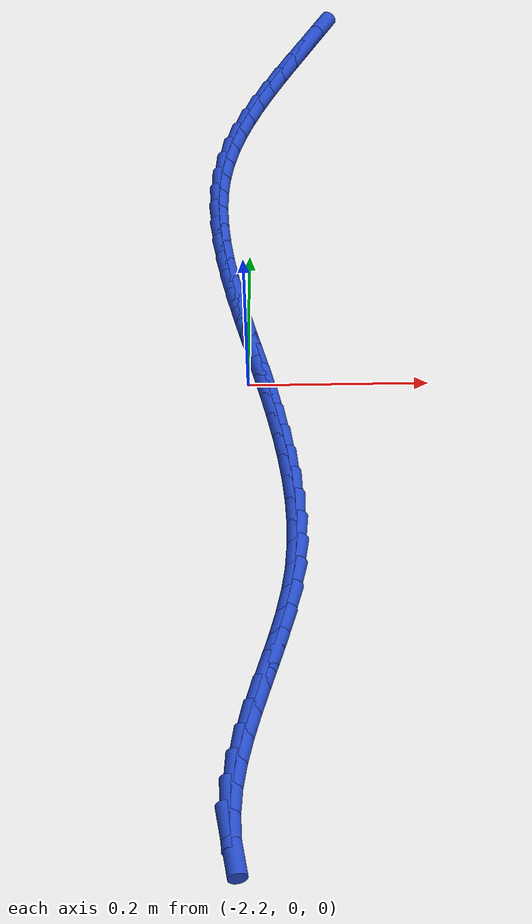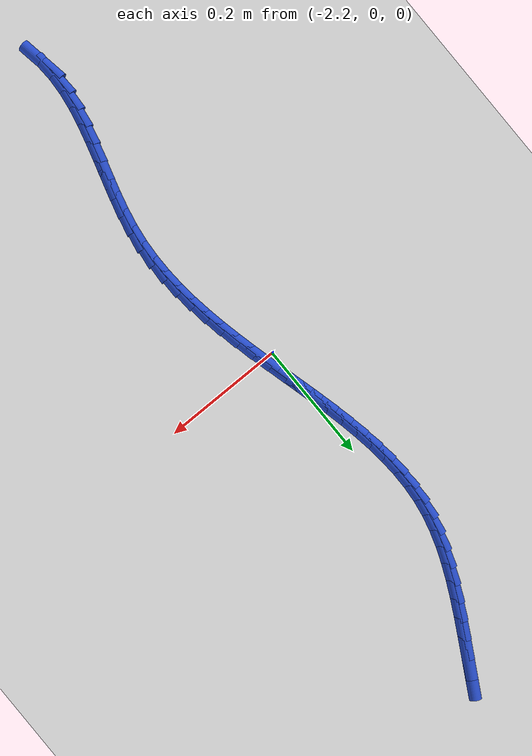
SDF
<sdf version="1.6">
 <world name="default">
  <model name="ground_plane">
   <static>1</static>
   <link name="link">
    <collision name="collision">
     <geometry><plane><normal>0 0 1</normal><size>100 100</size></plane></geometry>
     <surface><friction><ode><mu>100</mu><mu2>50</mu2></ode></friction></surface>
    </collision>
    <visual name="visual">
     <cast_shadows>0</cast_shadows>
     <geometry><plane><normal>0 0 1</normal><size>100 100</size></plane></geometry>
     <material>
      <script><uri>file://media/materials/scripts/gazebo.material</uri><name>Gazebo/WhiteGlow</name></script>
     </material>
    </visual>
   </link>
  </model>
  <model name="line">
   <link name="link_103">
    <pose>-2.1206193785751184 0.5871853800706633 0.01 0 1.57 1.0613909155585042</pose>
    <collision name="collision">
     <geometry><cylinder><radius>0.01</radius><length>0.08</length></cylinder></geometry>
    </collision>
    <visual name="visual">
     <material>
      <script><name>Gazebo/Blue</name><uri>file://media/materials/scripts/gazebo.material</uri></script>
     </material>
     <geometry><cylinder><radius>0.01</radius><length>0.08</length></cylinder></geometry>
    </visual>
   </link>
   <link name="link_104">
    <pose>-2.1363134453337125 0.5590889335191173 0.01 0 1.57 1.061616535425581</pose>
    <collision name="collision">
     <geometry><cylinder><radius>0.01</radius><length>0.08</length></cylinder></geometry>
    </collision>
    <visual name="visual">
     <material>
      <script><name>Gazebo/Blue</name><uri>file://media/materials/scripts/gazebo.material</uri></script>
     </material>
     <geometry><cylinder><radius>0.01</radius><length>0.08</length></cylinder></geometry>
    </visual>
   </link>
   <link name="link_105">
    <pose>-2.151620590715575 0.5316706481648501 0.01 0 1.57 1.0701894804564374</pose>
    <collision name="collision">
     <geometry><cylinder><radius>0.01</radius><length>0.08</length></cylinder></geometry>
    </collision>
    <visual name="visual">
     <material>
      <script><name>Gazebo/Blue</name><uri>file://media/materials/scripts/gazebo.material</uri></script>
     </material>
     <geometry><cylinder><radius>0.01</radius><length>0.08</length></cylinder></geometry>
    </visual>
   </link>
   <link name="link_106">
    <pose>-2.1663204991392115 0.5048014138864755 0.01 0 1.57 1.087750220462706</pose>
    <collision name="collision">
     <geometry><cylinder><radius>0.01</radius><length>0.08</length></cylinder></geometry>
    </collision>
    <visual name="visual">
     <material>
      <script><name>Gazebo/Blue</name><uri>file://media/materials/scripts/gazebo.material</uri></script>
     </material>
     <geometry><cylinder><radius>0.01</radius><length>0.08</length></cylinder></geometry>
    </visual>
   </link>
   <link name="link_107">
    <pose>-2.180192855023134 0.47835212056260845 0.01 0 1.57 1.1149698035746949</pose>
    <collision name="collision">
     <geometry><cylinder><radius>0.01</radius><length>0.08</length></cylinder></geometry>
    </collision>
    <visual name="visual">
     <material>
      <script><name>Gazebo/Blue</name><uri>file://media/materials/scripts/gazebo.material</uri></script>
     </material>
     <geometry><cylinder><radius>0.01</radius><length>0.08</length></cylinder></geometry>
    </visual>
   </link>
   <link name="link_108">
    <pose>-2.193017342785847 0.4521936580718634 0.01 0 1.57 1.1525014414915644</pose>
    <collision name="collision">
     <geometry><cylinder><radius>0.01</radius><length>0.08</length></cylinder></geometry>
    </collision>
    <visual name="visual">
     <material>
      <script><name>Gazebo/Blue</name><uri>file://media/materials/scripts/gazebo.material</uri></script>
     </material>
     <geometry><cylinder><radius>0.01</radius><length>0.08</length></cylinder></geometry>
    </visual>
   </link>
   <link name="link_109">
    <pose>-2.204573646845862 0.42619691629285483 0.01 0 1.57 1.2008875662408622</pose>
    <collision name="collision">
     <geometry><cylinder><radius>0.01</radius><length>0.08</length></cylinder></geometry>
    </collision>
    <visual name="visual">
     <material>
      <script><name>Gazebo/Blue</name><uri>file://media/materials/scripts/gazebo.material</uri></script>
     </material>
     <geometry><cylinder><radius>0.01</radius><length>0.08</length></cylinder></geometry>
    </visual>
   </link>
   <link name="link_110">
    <pose>-2.214641451621686 0.4002327851041974 0.01 0 1.57 1.260411714221672</pose>
    <collision name="collision">
     <geometry><cylinder><radius>0.01</radius><length>0.08</length></cylinder></geometry>
    </collision>
    <visual name="visual">
     <material>
      <script><name>Gazebo/Blue</name><uri>file://media/materials/scripts/gazebo.material</uri></script>
     </material>
     <geometry><cylinder><radius>0.01</radius><length>0.08</length></cylinder></geometry>
    </visual>
   </link>
   <link name="link_111">
    <pose>-2.223000441531826 0.37417215438450535 0.01 0 1.57 1.3308976417467264</pose>
    <collision name="collision">
     <geometry><cylinder><radius>0.01</radius><length>0.08</length></cylinder></geometry>
    </collision>
    <visual name="visual">
     <material>
      <script><name>Gazebo/Blue</name><uri>file://media/materials/scripts/gazebo.material</uri></script>
     </material>
     <geometry><cylinder><radius>0.01</radius><length>0.08</length></cylinder></geometry>
    </visual>
   </link>
   <link name="link_112">
    <pose>-2.229430300994793 0.34788591401239355 0.01 0 1.57 1.4113078584305199</pose>
    <collision name="collision">
     <geometry><cylinder><radius>0.01</radius><length>0.08</length></cylinder></geometry>
    </collision>
    <visual name="visual">
     <material>
      <script><name>Gazebo/Blue</name><uri>file://media/materials/scripts/gazebo.material</uri></script>
     </material>
     <geometry><cylinder><radius>0.01</radius><length>0.08</length></cylinder></geometry>
    </visual>
   </link>
   <link name="link_113">
    <pose>-2.233715356236095 0.32124661430352414 0.01 0 1.57 1.4930998558786155</pose>
    <collision name="collision">
     <geometry><cylinder><radius>0.01</radius><length>0.08</length></cylinder></geometry>
    </collision>
    <visual name="visual">
     <material>
      <script><name>Gazebo/Blue</name><uri>file://media/materials/scripts/gazebo.material</uri></script>
     </material>
     <geometry><cylinder><radius>0.01</radius><length>0.08</length></cylinder></geometry>
    </visual>
   </link>
   <link name="link_114">
    <pose>-2.2358216590619846 0.2941918112678477 0.01 0 1.57 1.5660451806111377</pose>
    <collision name="collision">
     <geometry><cylinder><radius>0.01</radius><length>0.08</length></cylinder></geometry>
    </collision>
    <visual name="visual">
     <material>
      <script><name>Gazebo/Blue</name><uri>file://media/materials/scripts/gazebo.material</uri></script>
     </material>
     <geometry><cylinder><radius>0.01</radius><length>0.08</length></cylinder></geometry>
    </visual>
   </link>
   <link name="link_115">
    <pose>-2.235952069697475 0.2667437704846096 0.01 0 1.57 -1.5123757942140028</pose>
    <collision name="collision">
     <geometry><cylinder><radius>0.01</radius><length>0.08</length></cylinder></geometry>
    </collision>
    <visual name="visual">
     <material>
      <script><name>Gazebo/Blue</name><uri>file://media/materials/scripts/gazebo.material</uri></script>
     </material>
     <geometry><cylinder><radius>0.01</radius><length>0.08</length></cylinder></geometry>
    </visual>
   </link>
   <link name="link_116">
    <pose>-2.234325349377034 0.23893044553886758 0.01 0 1.57 -1.4588325666763338</pose>
    <collision name="collision">
     <geometry><cylinder><radius>0.01</radius><length>0.08</length></cylinder></geometry>
    </collision>
    <visual name="visual">
     <material>
      <script><name>Gazebo/Blue</name><uri>file://media/materials/scripts/gazebo.material</uri></script>
     </material>
     <geometry><cylinder><radius>0.01</radius><length>0.08</length></cylinder></geometry>
    </visual>
   </link>
   <link name="link_117">
    <pose>-2.2311602593351307 0.2107797900156792 0.01 0 1.57 -1.4145026907400178</pose>
    <collision name="collision">
     <geometry><cylinder><radius>0.01</radius><length>0.08</length></cylinder></geometry>
    </collision>
    <visual name="visual">
     <material>
      <script><name>Gazebo/Blue</name><uri>file://media/materials/scripts/gazebo.material</uri></script>
     </material>
     <geometry><cylinder><radius>0.01</radius><length>0.08</length></cylinder></geometry>
    </visual>
   </link>
   <link name="link_118">
    <pose>-2.226675560806233 0.18231975750010226 0.01 0 1.57 -1.378851256314422</pose>
    <collision name="collision">
     <geometry><cylinder><radius>0.01</radius><length>0.08</length></cylinder></geometry>
    </collision>
    <visual name="visual">
     <material>
      <script><name>Gazebo/Blue</name><uri>file://media/materials/scripts/gazebo.material</uri></script>
     </material>
     <geometry><cylinder><radius>0.01</radius><length>0.08</length></cylinder></geometry>
    </visual>
   </link>
   <link name="link_119">
    <pose>-2.221090015024809 0.15357830157719451 0.01 0 1.57 -1.351328392342463</pose>
    <collision name="collision">
     <geometry><cylinder><radius>0.01</radius><length>0.08</length></cylinder></geometry>
    </collision>
    <visual name="visual">
     <material>
      <script><name>Gazebo/Blue</name><uri>file://media/materials/scripts/gazebo.material</uri></script>
     </material>
     <geometry><cylinder><radius>0.01</radius><length>0.08</length></cylinder></geometry>
    </visual>
   </link>
   <link name="link_120">
    <pose>-2.2146223832253265 0.12458337583201404 0.01 0 1.57 -1.3314348963027127</pose>
    <collision name="collision">
     <geometry><cylinder><radius>0.01</radius><length>0.08</length></cylinder></geometry>
    </collision>
    <visual name="visual">
     <material>
      <script><name>Gazebo/Blue</name><uri>file://media/materials/scripts/gazebo.material</uri></script>
     </material>
     <geometry><cylinder><radius>0.01</radius><length>0.08</length></cylinder></geometry>
    </visual>
   </link>
   <link name="link_121">
    <pose>-2.2074914266422536 0.09536293384961775 0.01 0 1.57 -1.3187591520098916</pose>
    <collision name="collision">
     <geometry><cylinder><radius>0.01</radius><length>0.08</length></cylinder></geometry>
    </collision>
    <visual name="visual">
     <material>
      <script><name>Gazebo/Blue</name><uri>file://media/materials/scripts/gazebo.material</uri></script>
     </material>
     <geometry><cylinder><radius>0.01</radius><length>0.08</length></cylinder></geometry>
    </visual>
   </link>
   <link name="link_122">
    <pose>-2.1999159065100593 0.0659449292150638 0.01 0 1.57 -1.312995114023899</pose>
    <collision name="collision">
     <geometry><cylinder><radius>0.01</radius><length>0.08</length></cylinder></geometry>
    </collision>
    <visual name="visual">
     <material>
      <script><name>Gazebo/Blue</name><uri>file://media/materials/scripts/gazebo.material</uri></script>
     </material>
     <geometry><cylinder><radius>0.01</radius><length>0.08</length></cylinder></geometry>
    </visual>
   </link>
   <link name="link_123">
    <pose>-2.1921145840632117 0.036357315513409955 0.01 0 1.57 -1.3139485844474137</pose>
    <collision name="collision">
     <geometry><cylinder><radius>0.01</radius><length>0.08</length></cylinder></geometry>
    </collision>
    <visual name="visual">
     <material>
      <script><name>Gazebo/Blue</name><uri>file://media/materials/scripts/gazebo.material</uri></script>
     </material>
     <geometry><cylinder><radius>0.01</radius><length>0.08</length></cylinder></geometry>
    </visual>
   </link>
   <link name="link_124">
    <pose>-2.1843062205361785 0.006628046329713824 0.01 0 1.57 -1.3215362949009049</pose>
    <collision name="collision">
     <geometry><cylinder><radius>0.01</radius><length>0.08</length></cylinder></geometry>
    </collision>
    <visual name="visual">
     <material>
      <script><name>Gazebo/Blue</name><uri>file://media/materials/scripts/gazebo.material</uri></script>
     </material>
     <geometry><cylinder><radius>0.01</radius><length>0.08</length></cylinder></geometry>
    </visual>
   </link>
   <link name="link_125">
    <pose>-2.1767095771634284 -0.02321492475096683 0.01 0 1.57 -1.335779984610406</pose>
    <collision name="collision">
     <geometry><cylinder><radius>0.01</radius><length>0.08</length></cylinder></geometry>
    </collision>
    <visual name="visual">
     <material>
      <script><name>Gazebo/Blue</name><uri>file://media/materials/scripts/gazebo.material</uri></script>
     </material>
     <geometry><cylinder><radius>0.01</radius><length>0.08</length></cylinder></geometry>
    </visual>
   </link>
   <link name="link_126">
    <pose>-2.169543415179428 -0.05314364414357423 0.01 0 1.57 -1.3567957662232457</pose>
    <collision name="collision">
     <geometry><cylinder><radius>0.01</radius><length>0.08</length></cylinder></geometry>
    </collision>
    <visual name="visual">
     <material>
      <script><name>Gazebo/Blue</name><uri>file://media/materials/scripts/gazebo.material</uri></script>
     </material>
     <geometry><cylinder><radius>0.01</radius><length>0.08</length></cylinder></geometry>
    </visual>
   </link>
   <link name="link_127">
    <pose>-2.1630264958186483 -0.0831301582630507 0.01 0 1.57 -1.384777466583339</pose>
    <collision name="collision">
     <geometry><cylinder><radius>0.01</radius><length>0.08</length></cylinder></geometry>
    </collision>
    <visual name="visual">
     <material>
      <script><name>Gazebo/Blue</name><uri>file://media/materials/scripts/gazebo.material</uri></script>
     </material>
     <geometry><cylinder><radius>0.01</radius><length>0.08</length></cylinder></geometry>
    </visual>
   </link>
   <link name="link_128">
    <pose>-2.157377580315556 -0.11314651352433851 0.01 0 1.57 -1.4199712342445334</pose>
    <collision name="collision">
     <geometry><cylinder><radius>0.01</radius><length>0.08</length></cylinder></geometry>
    </collision>
    <visual name="visual">
     <material>
      <script><name>Gazebo/Blue</name><uri>file://media/materials/scripts/gazebo.material</uri></script>
     </material>
     <geometry><cylinder><radius>0.01</radius><length>0.08</length></cylinder></geometry>
    </visual>
   </link>
   <link name="link_129">
    <pose>-2.1528154299046194 -0.14316475634237993 0.01 0 1.57 -1.4626376160606063</pose>
    <collision name="collision">
     <geometry><cylinder><radius>0.01</radius><length>0.08</length></cylinder></geometry>
    </collision>
    <visual name="visual">
     <material>
      <script><name>Gazebo/Blue</name><uri>file://media/materials/scripts/gazebo.material</uri></script>
     </material>
     <geometry><cylinder><radius>0.01</radius><length>0.08</length></cylinder></geometry>
    </visual>
   </link>
   <link name="link_130">
    <pose>-2.1495588058203063 -0.17315693313211727 0.01 0 1.57 -1.5129969448407061</pose>
    <collision name="collision">
     <geometry><cylinder><radius>0.01</radius><length>0.08</length></cylinder></geometry>
    </collision>
    <visual name="visual">
     <material>
      <script><name>Gazebo/Blue</name><uri>file://media/materials/scripts/gazebo.material</uri></script>
     </material>
     <geometry><cylinder><radius>0.01</radius><length>0.08</length></cylinder></geometry>
    </visual>
   </link>
   <link name="link_131">
    <pose>-2.147826469297086 -0.2030950903084927 0.01 0 1.57 1.570437531046315</pose>
    <collision name="collision">
     <geometry><cylinder><radius>0.01</radius><length>0.08</length></cylinder></geometry>
    </collision>
    <visual name="visual">
     <material>
      <script><name>Gazebo/Blue</name><uri>file://media/materials/scripts/gazebo.material</uri></script>
     </material>
     <geometry><cylinder><radius>0.01</radius><length>0.08</length></cylinder></geometry>
    </visual>
   </link>
   <link name="link_132">
    <pose>-2.1478371815694257 -0.23295127428644866 0.01 0 1.57 1.5045816537300245</pose>
    <collision name="collision">
     <geometry><cylinder><radius>0.01</radius><length>0.08</length></cylinder></geometry>
    </collision>
    <visual name="visual">
     <material>
      <script><name>Gazebo/Blue</name><uri>file://media/materials/scripts/gazebo.material</uri></script>
     </material>
     <geometry><cylinder><radius>0.01</radius><length>0.08</length></cylinder></geometry>
    </visual>
   </link>
   <link name="link_133">
    <pose>-2.149809703871793 -0.26269753148092734 0.01 0 1.57 1.4323422582470011</pose>
    <collision name="collision">
     <geometry><cylinder><radius>0.01</radius><length>0.08</length></cylinder></geometry>
    </collision>
    <visual name="visual">
     <material>
      <script><name>Gazebo/Blue</name><uri>file://media/materials/scripts/gazebo.material</uri></script>
     </material>
     <geometry><cylinder><radius>0.01</radius><length>0.08</length></cylinder></geometry>
    </visual>
   </link>
   <link name="link_134">
    <pose>-2.1539356756662857 -0.29230716138182056 0.01 0 1.57 1.3679987598869159</pose>
    <collision name="collision">
     <geometry><cylinder><radius>0.01</radius><length>0.08</length></cylinder></geometry>
    </collision>
    <visual name="visual">
     <material>
      <script><name>Gazebo/Blue</name><uri>file://media/materials/scripts/gazebo.material</uri></script>
     </material>
     <geometry><cylinder><radius>0.01</radius><length>0.08</length></cylinder></geometry>
    </visual>
   </link>
   <link name="link_135">
    <pose>-2.159994465185248 -0.32177251115567285 0.01 0 1.57 1.3220275016027716</pose>
    <collision name="collision">
     <geometry><cylinder><radius>0.01</radius><length>0.08</length></cylinder></geometry>
    </collision>
    <visual name="visual">
     <material>
      <script><name>Gazebo/Blue</name><uri>file://media/materials/scripts/gazebo.material</uri></script>
     </material>
     <geometry><cylinder><radius>0.01</radius><length>0.08</length></cylinder></geometry>
    </visual>
   </link>
   <link name="link_136">
    <pose>-2.1674447423631786 -0.3511007448105637 0.01 0 1.57 1.2940959870295594</pose>
    <collision name="collision">
     <geometry><cylinder><radius>0.01</radius><length>0.08</length></cylinder></geometry>
    </collision>
    <visual name="visual">
     <material>
      <script><name>Gazebo/Blue</name><uri>file://media/materials/scripts/gazebo.material</uri></script>
     </material>
     <geometry><cylinder><radius>0.01</radius><length>0.08</length></cylinder></geometry>
    </visual>
   </link>
   <link name="link_137">
    <pose>-2.1757367329345287 -0.38029941649189086 0.01 0 1.57 1.2837332279029512</pose>
    <collision name="collision">
     <geometry><cylinder><radius>0.01</radius><length>0.08</length></cylinder></geometry>
    </collision>
    <visual name="visual">
     <material>
      <script><name>Gazebo/Blue</name><uri>file://media/materials/scripts/gazebo.material</uri></script>
     </material>
     <geometry><cylinder><radius>0.01</radius><length>0.08</length></cylinder></geometry>
    </visual>
   </link>
   <link name="link_138">
    <pose>-2.1843206626337506 -0.409376080345052 0.01 0 1.57 1.2908637533810887</pose>
    <collision name="collision">
     <geometry><cylinder><radius>0.01</radius><length>0.08</length></cylinder></geometry>
    </collision>
    <visual name="visual">
     <material>
      <script><name>Gazebo/Blue</name><uri>file://media/materials/scripts/gazebo.material</uri></script>
     </material>
     <geometry><cylinder><radius>0.01</radius><length>0.08</length></cylinder></geometry>
    </visual>
   </link>
   <link name="link_139">
    <pose>-2.1926467571952952 -0.43833829051544515 0.01 0 1.57 1.315905570051755</pose>
    <collision name="collision">
     <geometry><cylinder><radius>0.01</radius><length>0.08</length></cylinder></geometry>
    </collision>
    <visual name="visual">
     <material>
      <script><name>Gazebo/Blue</name><uri>file://media/materials/scripts/gazebo.material</uri></script>
     </material>
     <geometry><cylinder><radius>0.01</radius><length>0.08</length></cylinder></geometry>
    </visual>
   </link>
   <link name="link_140">
    <pose>-2.2001652423536155 -0.46719360114846803 0.01 0 1.57 1.3597326203890177</pose>
    <collision name="collision">
     <geometry><cylinder><radius>0.01</radius><length>0.08</length></cylinder></geometry>
    </collision>
    <visual name="visual">
     <material>
      <script><name>Gazebo/Blue</name><uri>file://media/materials/scripts/gazebo.material</uri></script>
     </material>
     <geometry><cylinder><radius>0.01</radius><length>0.08</length></cylinder></geometry>
    </visual>
   </link>
   <link name="link_141">
    <pose>-2.2063263438431617 -0.49594956638951854 0.01 0 1.57 1.4234653885695774</pose>
    <collision name="collision">
     <geometry><cylinder><radius>0.01</radius><length>0.08</length></cylinder></geometry>
    </collision>
    <visual name="visual">
     <material>
      <script><name>Gazebo/Blue</name><uri>file://media/materials/scripts/gazebo.material</uri></script>
     </material>
     <geometry><cylinder><radius>0.01</radius><length>0.08</length></cylinder></geometry>
    </visual>
   </link>
   <link name="link_142">
    <pose>-2.210580287398387 -0.5246137403839948 0.01 0 1.57 1.508002317956785</pose>
    <collision name="collision">
     <geometry><cylinder><radius>0.01</radius><length>0.08</length></cylinder></geometry>
    </collision>
    <visual name="visual">
     <material>
      <script><name>Gazebo/Blue</name><uri>file://media/materials/scripts/gazebo.material</uri></script>
     </material>
     <geometry><cylinder><radius>0.01</radius><length>0.08</length></cylinder></geometry>
    </visual>
   </link>
   <link name="link_143">
    <pose>-2.212377298753741 -0.5531936772772941 0.01 0 1.57 -1.5283811838089898</pose>
    <collision name="collision">
     <geometry><cylinder><radius>0.01</radius><length>0.08</length></cylinder></geometry>
    </collision>
    <visual name="visual">
     <material>
      <script><name>Gazebo/Blue</name><uri>file://media/materials/scripts/gazebo.material</uri></script>
     </material>
     <geometry><cylinder><radius>0.01</radius><length>0.08</length></cylinder></geometry>
    </visual>
   </link>
   <link name="link_144">
    <pose>-2.2111676036436774 -0.5816969312148146 0.01 0 1.57 -1.4052455881407602</pose>
    <collision name="collision">
     <geometry><cylinder><radius>0.01</radius><length>0.08</length></cylinder></geometry>
    </collision>
    <visual name="visual">
     <material>
      <script><name>Gazebo/Blue</name><uri>file://media/materials/scripts/gazebo.material</uri></script>
     </material>
     <geometry><cylinder><radius>0.01</radius><length>0.08</length></cylinder></geometry>
    </visual>
   </link>
  </model>
 </world>
</sdf>
